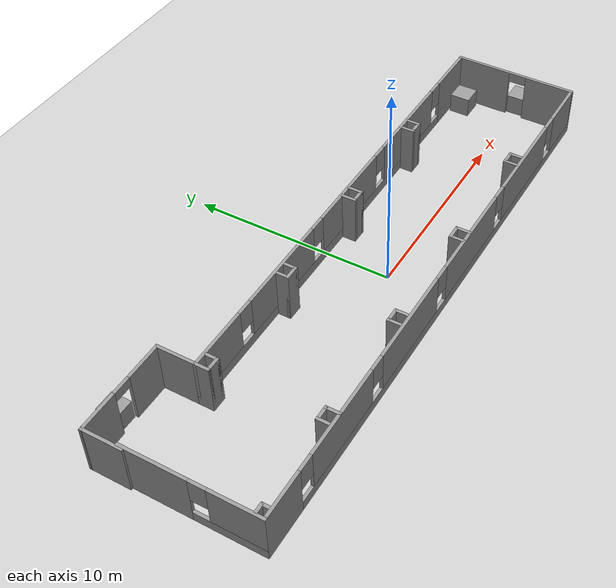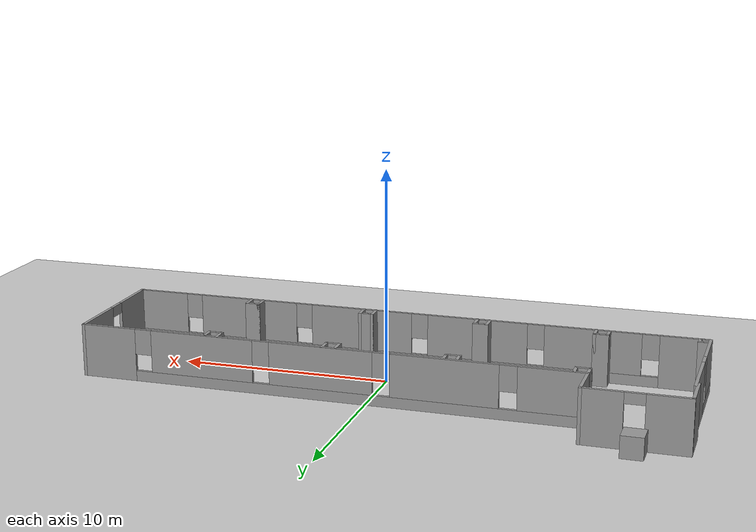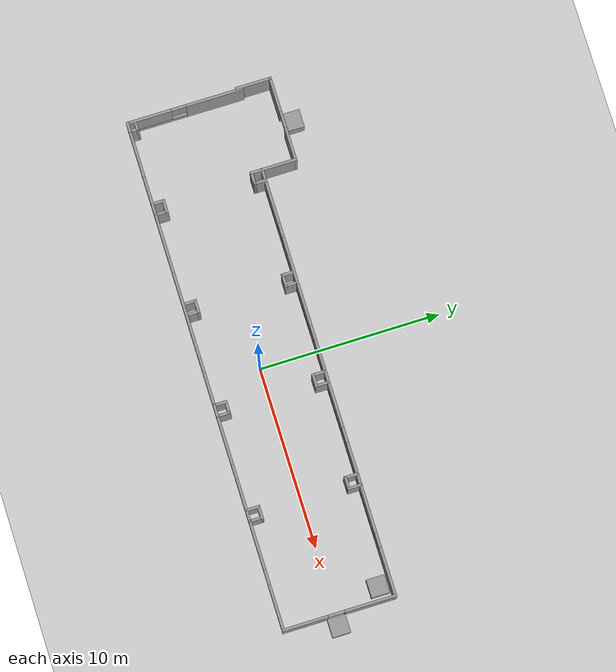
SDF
<sdf version="1.7">
 <world name="default">
  <light name="sun" type="directional">
   <pose>0 0 10 0 -0 0</pose>
   <diffuse>0.8 0.8 0.8 1</diffuse>
   <specular>0.2 0.2 0.2 1</specular>
   <attenuation>
    <range>1000</range>
    <constant>0.9</constant>
    <linear>0.01</linear>
    <quadratic>0.001</quadratic>
   </attenuation>
   <direction>-0.5 0.1 -0.9</direction>
   <spot><inner_angle>0</inner_angle><outer_angle>0</outer_angle><falloff>0</falloff></spot>
  </light>
  <model name="ground_plane">
   <static>1</static>
   <link name="link">
    <collision name="collision">
     <geometry><plane><normal>0 0 1</normal><size>100 100</size></plane></geometry>
     <surface>
      <contact><collide_bitmask>65535</collide_bitmask></contact>
      <friction><ode><mu>100</mu><mu2>50</mu2></ode></friction>
     </surface>
    </collision>
    <visual name="visual">
     <cast_shadows>0</cast_shadows>
     <geometry><plane><normal>0 0 1</normal><size>100 100</size></plane></geometry>
     <material>
      <script><uri>file://media/materials/scripts/gazebo.material</uri><name>Gazebo/Grey</name></script>
     </material>
    </visual>
   </link>
  </model>
  <gravity>0 0 -9.8</gravity>
  <magnetic_field>6e-06 2.3e-05 -4.2e-05</magnetic_field>
  <atmosphere type="adiabatic"/>
  <physics type="ode">
   <max_step_size>0.001</max_step_size>
   <real_time_factor>1</real_time_factor>
   <real_time_update_rate>1000</real_time_update_rate>
  </physics>
  <scene><ambient>0.4 0.4 0.4 1</ambient><background>0.7 0.7 0.7 1</background><shadows>1</shadows></scene>
  <spherical_coordinates>
   <surface_model>EARTH_WGS84</surface_model>
   <latitude_deg>0</latitude_deg>
   <longitude_deg>0</longitude_deg>
   <elevation>0</elevation>
   <heading_deg>0</heading_deg>
  </spherical_coordinates>
  <model name="hanhlang11">
   <pose>-0.360122 1.04429 0 0 -0 0</pose>
   <link name="Wall_10">
    <pose>-11.8 3.975 0 0 -0 3.14159</pose>
    <visual name="Wall_10_Visual_0">
     <pose>-1.4343 0 1.25 0 -0 0</pose>
     <geometry><box><size>1.8814 0.15 2.5</size></box></geometry>
     <material>
      <script><uri>file://media/materials/scripts/gazebo.material</uri><name>Gazebo/Grey</name></script>
      <ambient>1 1 1 1</ambient>
     </material>
     <meta><layer>0</layer></meta>
    </visual>
    <collision name="Wall_10_Collision_0">
     <geometry><box><size>1.8814 0.15 2.5</size></box></geometry>
     <pose>-1.4343 0 1.25 0 -0 0</pose>
    </collision>
    <visual name="Wall_10_Visual_1">
     <pose>1.3907 0 1.25 0 -0 0</pose>
     <geometry><box><size>1.9686 0.15 2.5</size></box></geometry>
     <material>
      <script><uri>file://media/materials/scripts/gazebo.material</uri><name>Gazebo/Grey</name></script>
      <ambient>1 1 1 1</ambient>
     </material>
     <meta><layer>0</layer></meta>
    </visual>
    <collision name="Wall_10_Collision_1">
     <geometry><box><size>1.9686 0.15 2.5</size></box></geometry>
     <pose>1.3907 0 1.25 0 -0 0</pose>
    </collision>
    <visual name="Wall_10_Visual_2">
     <pose>-0.043604 0 2.25 0 -0 0</pose>
     <geometry><box><size>0.9 0.15 0.5</size></box></geometry>
     <material>
      <script><uri>file://media/materials/scripts/gazebo.material</uri><name>Gazebo/Grey</name></script>
      <ambient>1 1 1 1</ambient>
     </material>
     <meta><layer>0</layer></meta>
    </visual>
    <collision name="Wall_10_Collision_2">
     <geometry><box><size>0.9 0.15 0.5</size></box></geometry>
     <pose>-0.043604 0 2.25 0 -0 0</pose>
    </collision>
   </link>
   <link name="Wall_11">
    <collision name="Wall_11_Collision">
     <geometry><box><size>0.15 0.15 2.5</size></box></geometry>
     <pose>0 0 1.25 0 -0 0</pose>
    </collision>
    <visual name="Wall_11_Visual">
     <pose>0 0 1.25 0 -0 0</pose>
     <geometry><box><size>0.15 0.15 2.5</size></box></geometry>
     <material>
      <script><uri>file://media/materials/scripts/gazebo.material</uri><name>Gazebo/Grey</name></script>
      <ambient>1 1 1 1</ambient>
     </material>
     <meta><layer>0</layer></meta>
    </visual>
    <pose>-14.1 3.975 0 0 -0 0</pose>
   </link>
   <link name="Wall_12">
    <collision name="Wall_12_Collision">
     <geometry><box><size>2 0.15 2.5</size></box></geometry>
     <pose>0 0 1.25 0 -0 0</pose>
    </collision>
    <visual name="Wall_12_Visual">
     <pose>0 0 1.25 0 -0 0</pose>
     <geometry><box><size>2 0.15 2.5</size></box></geometry>
     <material>
      <script><uri>file://media/materials/scripts/gazebo.material</uri><name>Gazebo/Grey</name></script>
      <ambient>1 1 1 1</ambient>
     </material>
     <meta><layer>0</layer></meta>
    </visual>
    <pose>-14.1 3.05 0 0 -0 -1.5708</pose>
   </link>
   <link name="Wall_5">
    <pose>-14 -0.8 0 0 -0 -1.5708</pose>
    <visual name="Wall_5_Visual_0">
     <pose>-1.65425 0 1.25 0 -0 0</pose>
     <geometry><box><size>3.1915 0.15 2.5</size></box></geometry>
     <material>
      <script><uri>file://media/materials/scripts/gazebo.material</uri><name>Gazebo/Grey</name></script>
      <ambient>1 1 1 1</ambient>
     </material>
     <meta><layer>0</layer></meta>
    </visual>
    <collision name="Wall_5_Collision_0">
     <geometry><box><size>3.1915 0.15 2.5</size></box></geometry>
     <pose>-1.65425 0 1.25 0 -0 0</pose>
    </collision>
    <visual name="Wall_5_Visual_1">
     <pose>1.59575 0 0.25 0 -0 0</pose>
     <geometry><box><size>3.3085 0.15 0.5</size></box></geometry>
     <material>
      <script><uri>file://media/materials/scripts/gazebo.material</uri><name>Gazebo/Grey</name></script>
      <ambient>1 1 1 1</ambient>
     </material>
     <meta><layer>0</layer></meta>
    </visual>
    <collision name="Wall_5_Collision_1">
     <geometry><box><size>3.3085 0.15 0.5</size></box></geometry>
     <pose>1.59575 0 0.25 0 -0 0</pose>
    </collision>
    <visual name="Wall_5_Visual_2">
     <pose>1.99575 0 1.5 0 -0 0</pose>
     <geometry><box><size>2.5085 0.15 2</size></box></geometry>
     <material>
      <script><uri>file://media/materials/scripts/gazebo.material</uri><name>Gazebo/Grey</name></script>
      <ambient>1 1 1 1</ambient>
     </material>
     <meta><layer>0</layer></meta>
    </visual>
    <collision name="Wall_5_Collision_2">
     <geometry><box><size>2.5085 0.15 2</size></box></geometry>
     <pose>1.99575 0 1.5 0 -0 0</pose>
    </collision>
    <visual name="Wall_5_Visual_3">
     <pose>0.341496 0 1.9 0 -0 0</pose>
     <geometry><box><size>0.8 0.15 1.2</size></box></geometry>
     <material>
      <script><uri>file://media/materials/scripts/gazebo.material</uri><name>Gazebo/Grey</name></script>
      <ambient>1 1 1 1</ambient>
     </material>
     <meta><layer>0</layer></meta>
    </visual>
    <collision name="Wall_5_Collision_3">
     <geometry><box><size>0.8 0.15 1.2</size></box></geometry>
     <pose>0.341496 0 1.9 0 -0 0</pose>
    </collision>
   </link>
   <link name="Wall_53">
    <collision name="Wall_53_Collision">
     <geometry><box><size>0.5 0.15 2.5</size></box></geometry>
     <pose>0 0 1.25 0 -0 0</pose>
    </collision>
    <visual name="Wall_53_Visual">
     <pose>0 0 1.25 0 -0 0</pose>
     <geometry><box><size>0.5 0.15 2.5</size></box></geometry>
     <material>
      <script><uri>file://media/materials/scripts/gazebo.material</uri><name>Gazebo/Grey</name></script>
      <ambient>1 1 1 1</ambient>
     </material>
     <meta><layer>0</layer></meta>
    </visual>
    <pose>-13.5375 -3.74217 0 0 -0 1.5708</pose>
   </link>
   <link name="Wall_54">
    <collision name="Wall_54_Collision">
     <geometry><box><size>0.5 0.15 2.5</size></box></geometry>
     <pose>0 0 1.25 0 -0 0</pose>
    </collision>
    <visual name="Wall_54_Visual">
     <pose>0 0 1.25 0 -0 0</pose>
     <geometry><box><size>0.5 0.15 2.5</size></box></geometry>
     <material>
      <script><uri>file://media/materials/scripts/gazebo.material</uri><name>Gazebo/Grey</name></script>
      <ambient>1 1 1 1</ambient>
     </material>
     <meta><layer>0</layer></meta>
    </visual>
    <pose>-13.7125 -3.56717 0 0 -0 3.14159</pose>
   </link>
   <link name="Wall_6">
    <pose>0.05 -3.975 0 0 -0 0</pose>
    <visual name="Wall_6_Visual_0">
     <pose>-12.9575 0 1.25 0 -0 0</pose>
     <geometry><box><size>2.33495 0.15 2.5</size></box></geometry>
     <material>
      <script><uri>file://media/materials/scripts/gazebo.material</uri><name>Gazebo/Grey</name></script>
      <ambient>1 1 1 1</ambient>
     </material>
     <meta><layer>0</layer></meta>
    </visual>
    <collision name="Wall_6_Collision_0">
     <geometry><box><size>2.33495 0.15 2.5</size></box></geometry>
     <pose>-12.9575 0 1.25 0 -0 0</pose>
    </collision>
    <visual name="Wall_6_Visual_1">
     <pose>1.16748 0 0.25 0 -0 0</pose>
     <geometry><box><size>25.915 0.15 0.5</size></box></geometry>
     <material>
      <script><uri>file://media/materials/scripts/gazebo.material</uri><name>Gazebo/Grey</name></script>
      <ambient>1 1 1 1</ambient>
     </material>
     <meta><layer>0</layer></meta>
    </visual>
    <collision name="Wall_6_Collision_1">
     <geometry><box><size>25.915 0.15 0.5</size></box></geometry>
     <pose>1.16748 0 0.25 0 -0 0</pose>
    </collision>
    <visual name="Wall_6_Visual_2">
     <pose>-8.73003 0 1.5 0 -0 0</pose>
     <geometry><box><size>4.52004 0.15 2</size></box></geometry>
     <material>
      <script><uri>file://media/materials/scripts/gazebo.material</uri><name>Gazebo/Grey</name></script>
      <ambient>1 1 1 1</ambient>
     </material>
     <meta><layer>0</layer></meta>
    </visual>
    <collision name="Wall_6_Collision_2">
     <geometry><box><size>4.52004 0.15 2</size></box></geometry>
     <pose>-8.73003 0 1.5 0 -0 0</pose>
    </collision>
    <visual name="Wall_6_Visual_3">
     <pose>-3.25964 0 1.5 0 -0 0</pose>
     <geometry><box><size>4.82074 0.15 2</size></box></geometry>
     <material>
      <script><uri>file://media/materials/scripts/gazebo.material</uri><name>Gazebo/Grey</name></script>
      <ambient>1 1 1 1</ambient>
     </material>
     <meta><layer>0</layer></meta>
    </visual>
    <collision name="Wall_6_Collision_3">
     <geometry><box><size>4.82074 0.15 2</size></box></geometry>
     <pose>-3.25964 0 1.5 0 -0 0</pose>
    </collision>
    <visual name="Wall_6_Visual_4">
     <pose>2.46519 0 1.5 0 -0 0</pose>
     <geometry><box><size>5.02891 0.15 2</size></box></geometry>
     <material>
      <script><uri>file://media/materials/scripts/gazebo.material</uri><name>Gazebo/Grey</name></script>
      <ambient>1 1 1 1</ambient>
     </material>
     <meta><layer>0</layer></meta>
    </visual>
    <collision name="Wall_6_Collision_4">
     <geometry><box><size>5.02891 0.15 2</size></box></geometry>
     <pose>2.46519 0 1.5 0 -0 0</pose>
    </collision>
    <visual name="Wall_6_Visual_5">
     <pose>8.27097 0 1.5 0 -0 0</pose>
     <geometry><box><size>4.98265 0.15 2</size></box></geometry>
     <material>
      <script><uri>file://media/materials/scripts/gazebo.material</uri><name>Gazebo/Grey</name></script>
      <ambient>1 1 1 1</ambient>
     </material>
     <meta><layer>0</layer></meta>
    </visual>
    <collision name="Wall_6_Collision_5">
     <geometry><box><size>4.98265 0.15 2</size></box></geometry>
     <pose>8.27097 0 1.5 0 -0 0</pose>
    </collision>
    <visual name="Wall_6_Visual_6">
     <pose>12.8436 0 1.5 0 -0 0</pose>
     <geometry><box><size>2.5627 0.15 2</size></box></geometry>
     <material>
      <script><uri>file://media/materials/scripts/gazebo.material</uri><name>Gazebo/Grey</name></script>
      <ambient>1 1 1 1</ambient>
     </material>
     <meta><layer>0</layer></meta>
    </visual>
    <collision name="Wall_6_Collision_6">
     <geometry><box><size>2.5627 0.15 2</size></box></geometry>
     <pose>12.8436 0 1.5 0 -0 0</pose>
    </collision>
    <visual name="Wall_6_Visual_7">
     <pose>-11.39 0 1.9 0 -0 0</pose>
     <geometry><box><size>0.8 0.15 1.2</size></box></geometry>
     <material>
      <script><uri>file://media/materials/scripts/gazebo.material</uri><name>Gazebo/Grey</name></script>
      <ambient>1 1 1 1</ambient>
     </material>
     <meta><layer>0</layer></meta>
    </visual>
    <collision name="Wall_6_Collision_7">
     <geometry><box><size>0.8 0.15 1.2</size></box></geometry>
     <pose>-11.39 0 1.9 0 -0 0</pose>
    </collision>
    <visual name="Wall_6_Visual_8">
     <pose>-6.07001 0 1.9 0 -0 0</pose>
     <geometry><box><size>0.8 0.15 1.2</size></box></geometry>
     <material>
      <script><uri>file://media/materials/scripts/gazebo.material</uri><name>Gazebo/Grey</name></script>
      <ambient>1 1 1 1</ambient>
     </material>
     <meta><layer>0</layer></meta>
    </visual>
    <collision name="Wall_6_Collision_8">
     <geometry><box><size>0.8 0.15 1.2</size></box></geometry>
     <pose>-6.07001 0 1.9 0 -0 0</pose>
    </collision>
    <visual name="Wall_6_Visual_9">
     <pose>-0.449268 0 1.9 0 -0 0</pose>
     <geometry><box><size>0.8 0.15 1.2</size></box></geometry>
     <material>
      <script><uri>file://media/materials/scripts/gazebo.material</uri><name>Gazebo/Grey</name></script>
      <ambient>1 1 1 1</ambient>
     </material>
     <meta><layer>0</layer></meta>
    </visual>
    <collision name="Wall_6_Collision_9">
     <geometry><box><size>0.8 0.15 1.2</size></box></geometry>
     <pose>-0.449268 0 1.9 0 -0 0</pose>
    </collision>
    <visual name="Wall_6_Visual_10">
     <pose>5.37965 0 1.9 0 -0 0</pose>
     <geometry><box><size>0.8 0.15 1.2</size></box></geometry>
     <material>
      <script><uri>file://media/materials/scripts/gazebo.material</uri><name>Gazebo/Grey</name></script>
      <ambient>1 1 1 1</ambient>
     </material>
     <meta><layer>0</layer></meta>
    </visual>
    <collision name="Wall_6_Collision_10">
     <geometry><box><size>0.8 0.15 1.2</size></box></geometry>
     <pose>5.37965 0 1.9 0 -0 0</pose>
    </collision>
    <visual name="Wall_6_Visual_11">
     <pose>11.1623 0 1.9 0 -0 0</pose>
     <geometry><box><size>0.8 0.15 1.2</size></box></geometry>
     <material>
      <script><uri>file://media/materials/scripts/gazebo.material</uri><name>Gazebo/Grey</name></script>
      <ambient>1 1 1 1</ambient>
     </material>
     <meta><layer>0</layer></meta>
    </visual>
    <collision name="Wall_6_Collision_11">
     <geometry><box><size>0.8 0.15 1.2</size></box></geometry>
     <pose>11.1623 0 1.9 0 -0 0</pose>
    </collision>
   </link>
   <link name="Wall_62">
    <collision name="Wall_62_Collision">
     <geometry><box><size>0.75 0.15 2.5</size></box></geometry>
     <pose>0 0 1.25 0 -0 0</pose>
    </collision>
    <visual name="Wall_62_Visual">
     <pose>0 0 1.25 0 -0 0</pose>
     <geometry><box><size>0.75 0.15 2.5</size></box></geometry>
     <material>
      <script><uri>file://media/materials/scripts/gazebo.material</uri><name>Gazebo/Grey</name></script>
      <ambient>1 1 1 1</ambient>
     </material>
     <meta><layer>0</layer></meta>
    </visual>
    <pose>7.4452 1.77581 0 0 -0 -1.5708</pose>
   </link>
   <link name="Wall_63">
    <collision name="Wall_63_Collision">
     <geometry><box><size>0.75 0.15 2.5</size></box></geometry>
     <pose>0 0 1.25 0 -0 0</pose>
    </collision>
    <visual name="Wall_63_Visual">
     <pose>0 0 1.25 0 -0 0</pose>
     <geometry><box><size>0.75 0.15 2.5</size></box></geometry>
     <material>
      <script><uri>file://media/materials/scripts/gazebo.material</uri><name>Gazebo/Grey</name></script>
      <ambient>1 1 1 1</ambient>
     </material>
     <meta><layer>0</layer></meta>
    </visual>
    <pose>7.7452 1.47581 0 0 -0 0</pose>
   </link>
   <link name="Wall_64">
    <collision name="Wall_64_Collision">
     <geometry><box><size>0.75 0.15 2.5</size></box></geometry>
     <pose>0 0 1.25 0 -0 0</pose>
    </collision>
    <visual name="Wall_64_Visual">
     <pose>0 0 1.25 0 -0 0</pose>
     <geometry><box><size>0.75 0.15 2.5</size></box></geometry>
     <material>
      <script><uri>file://media/materials/scripts/gazebo.material</uri><name>Gazebo/Grey</name></script>
      <ambient>1 1 1 1</ambient>
     </material>
     <meta><layer>0</layer></meta>
    </visual>
    <pose>8.0452 1.77581 0 0 -0 1.5708</pose>
   </link>
   <link name="Wall_66">
    <collision name="Wall_66_Collision">
     <geometry><box><size>0.75 0.15 2.5</size></box></geometry>
     <pose>0 0 1.25 0 -0 0</pose>
    </collision>
    <visual name="Wall_66_Visual">
     <pose>0 0 1.25 0 -0 0</pose>
     <geometry><box><size>0.75 0.15 2.5</size></box></geometry>
     <material>
      <script><uri>file://media/materials/scripts/gazebo.material</uri><name>Gazebo/Grey</name></script>
      <ambient>1 1 1 1</ambient>
     </material>
     <meta><layer>0</layer></meta>
    </visual>
    <pose>7.56085 -3.61502 0 0 -0 1.5708</pose>
   </link>
   <link name="Wall_67">
    <collision name="Wall_67_Collision">
     <geometry><box><size>0.75 0.15 2.5</size></box></geometry>
     <pose>0 0 1.25 0 -0 0</pose>
    </collision>
    <visual name="Wall_67_Visual">
     <pose>0 0 1.25 0 -0 0</pose>
     <geometry><box><size>0.75 0.15 2.5</size></box></geometry>
     <material>
      <script><uri>file://media/materials/scripts/gazebo.material</uri><name>Gazebo/Grey</name></script>
      <ambient>1 1 1 1</ambient>
     </material>
     <meta><layer>0</layer></meta>
    </visual>
    <pose>7.86085 -3.31502 0 0 -0 0</pose>
   </link>
   <link name="Wall_68">
    <collision name="Wall_68_Collision">
     <geometry><box><size>0.75 0.15 2.5</size></box></geometry>
     <pose>0 0 1.25 0 -0 0</pose>
    </collision>
    <visual name="Wall_68_Visual">
     <pose>0 0 1.25 0 -0 0</pose>
     <geometry><box><size>0.75 0.15 2.5</size></box></geometry>
     <material>
      <script><uri>file://media/materials/scripts/gazebo.material</uri><name>Gazebo/Grey</name></script>
      <ambient>1 1 1 1</ambient>
     </material>
     <meta><layer>0</layer></meta>
    </visual>
    <pose>8.16085 -3.61502 0 0 -0 -1.5708</pose>
   </link>
   <link name="Wall_7">
    <pose>14.1 -0.925 0 0 -0 1.5708</pose>
    <visual name="Wall_7_Visual_0">
     <pose>-1.86695 0 1.25 0 -0 0</pose>
     <geometry><box><size>2.5161 0.15 2.5</size></box></geometry>
     <material>
      <script><uri>file://media/materials/scripts/gazebo.material</uri><name>Gazebo/Grey</name></script>
      <ambient>1 1 1 1</ambient>
     </material>
     <meta><layer>0</layer></meta>
    </visual>
    <collision name="Wall_7_Collision_0">
     <geometry><box><size>2.5161 0.15 2.5</size></box></geometry>
     <pose>-1.86695 0 1.25 0 -0 0</pose>
    </collision>
    <visual name="Wall_7_Visual_1">
     <pose>1.70805 0 1.25 0 -0 0</pose>
     <geometry><box><size>2.8339 0.15 2.5</size></box></geometry>
     <material>
      <script><uri>file://media/materials/scripts/gazebo.material</uri><name>Gazebo/Grey</name></script>
      <ambient>1 1 1 1</ambient>
     </material>
     <meta><layer>0</layer></meta>
    </visual>
    <collision name="Wall_7_Collision_1">
     <geometry><box><size>2.8339 0.15 2.5</size></box></geometry>
     <pose>1.70805 0 1.25 0 -0 0</pose>
    </collision>
    <visual name="Wall_7_Visual_2">
     <pose>-0.158896 0 2.25 0 -0 0</pose>
     <geometry><box><size>0.9 0.15 0.5</size></box></geometry>
     <material>
      <script><uri>file://media/materials/scripts/gazebo.material</uri><name>Gazebo/Grey</name></script>
      <ambient>1 1 1 1</ambient>
     </material>
     <meta><layer>0</layer></meta>
    </visual>
    <collision name="Wall_7_Collision_2">
     <geometry><box><size>0.9 0.15 0.5</size></box></geometry>
     <pose>-0.158896 0 2.25 0 -0 0</pose>
    </collision>
   </link>
   <link name="Wall_70">
    <collision name="Wall_70_Collision">
     <geometry><box><size>0.75 0.15 2.5</size></box></geometry>
     <pose>0 0 1.25 0 -0 0</pose>
    </collision>
    <visual name="Wall_70_Visual">
     <pose>0 0 1.25 0 -0 0</pose>
     <geometry><box><size>0.75 0.15 2.5</size></box></geometry>
     <material>
      <script><uri>file://media/materials/scripts/gazebo.material</uri><name>Gazebo/Grey</name></script>
      <ambient>1 1 1 1</ambient>
     </material>
     <meta><layer>0</layer></meta>
    </visual>
    <pose>1.7782 1.75268 0 0 -0 -1.5708</pose>
   </link>
   <link name="Wall_71">
    <collision name="Wall_71_Collision">
     <geometry><box><size>0.75 0.15 2.5</size></box></geometry>
     <pose>0 0 1.25 0 -0 0</pose>
    </collision>
    <visual name="Wall_71_Visual">
     <pose>0 0 1.25 0 -0 0</pose>
     <geometry><box><size>0.75 0.15 2.5</size></box></geometry>
     <material>
      <script><uri>file://media/materials/scripts/gazebo.material</uri><name>Gazebo/Grey</name></script>
      <ambient>1 1 1 1</ambient>
     </material>
     <meta><layer>0</layer></meta>
    </visual>
    <pose>2.0782 1.45268 0 0 -0 0</pose>
   </link>
   <link name="Wall_72">
    <collision name="Wall_72_Collision">
     <geometry><box><size>0.75 0.15 2.5</size></box></geometry>
     <pose>0 0 1.25 0 -0 0</pose>
    </collision>
    <visual name="Wall_72_Visual">
     <pose>0 0 1.25 0 -0 0</pose>
     <geometry><box><size>0.75 0.15 2.5</size></box></geometry>
     <material>
      <script><uri>file://media/materials/scripts/gazebo.material</uri><name>Gazebo/Grey</name></script>
      <ambient>1 1 1 1</ambient>
     </material>
     <meta><layer>0</layer></meta>
    </visual>
    <pose>2.3782 1.75268 0 0 -0 1.5708</pose>
   </link>
   <link name="Wall_75">
    <collision name="Wall_75_Collision">
     <geometry><box><size>0.75 0.15 2.5</size></box></geometry>
     <pose>0 0 1.25 0 -0 0</pose>
    </collision>
    <visual name="Wall_75_Visual">
     <pose>0 0 1.25 0 -0 0</pose>
     <geometry><box><size>0.75 0.15 2.5</size></box></geometry>
     <material>
      <script><uri>file://media/materials/scripts/gazebo.material</uri><name>Gazebo/Grey</name></script>
      <ambient>1 1 1 1</ambient>
     </material>
     <meta><layer>0</layer></meta>
    </visual>
    <pose>1.7782 -3.63815 0 0 -0 1.5708</pose>
   </link>
   <link name="Wall_76">
    <collision name="Wall_76_Collision">
     <geometry><box><size>0.75 0.15 2.5</size></box></geometry>
     <pose>0 0 1.25 0 -0 0</pose>
    </collision>
    <visual name="Wall_76_Visual">
     <pose>0 0 1.25 0 -0 0</pose>
     <geometry><box><size>0.75 0.15 2.5</size></box></geometry>
     <material>
      <script><uri>file://media/materials/scripts/gazebo.material</uri><name>Gazebo/Grey</name></script>
      <ambient>1 1 1 1</ambient>
     </material>
     <meta><layer>0</layer></meta>
    </visual>
    <pose>2.0782 -3.33815 0 0 -0 0</pose>
   </link>
   <link name="Wall_77">
    <collision name="Wall_77_Collision">
     <geometry><box><size>0.75 0.15 2.5</size></box></geometry>
     <pose>0 0 1.25 0 -0 0</pose>
    </collision>
    <visual name="Wall_77_Visual">
     <pose>0 0 1.25 0 -0 0</pose>
     <geometry><box><size>0.75 0.15 2.5</size></box></geometry>
     <material>
      <script><uri>file://media/materials/scripts/gazebo.material</uri><name>Gazebo/Grey</name></script>
      <ambient>1 1 1 1</ambient>
     </material>
     <meta><layer>0</layer></meta>
    </visual>
    <pose>2.3782 -3.63815 0 0 -0 -1.5708</pose>
   </link>
   <link name="Wall_79">
    <collision name="Wall_79_Collision">
     <geometry><box><size>0.75 0.15 2.5</size></box></geometry>
     <pose>0 0 1.25 0 -0 0</pose>
    </collision>
    <visual name="Wall_79_Visual">
     <pose>0 0 1.25 0 -0 0</pose>
     <geometry><box><size>0.75 0.15 2.5</size></box></geometry>
     <material>
      <script><uri>file://media/materials/scripts/gazebo.material</uri><name>Gazebo/Grey</name></script>
      <ambient>1 1 1 1</ambient>
     </material>
     <meta><layer>0</layer></meta>
    </visual>
    <pose>-3.77314 1.79894 0 0 -0 -1.5708</pose>
   </link>
   <link name="Wall_8">
    <pose>2.3 2.125 0 0 -0 3.14159</pose>
    <visual name="Wall_8_Visual_0">
     <pose>-10.5243 0 1.25 0 -0 0</pose>
     <geometry><box><size>2.70149 0.15 2.5</size></box></geometry>
     <material>
      <script><uri>file://media/materials/scripts/gazebo.material</uri><name>Gazebo/Grey</name></script>
      <ambient>1 1 1 1</ambient>
     </material>
     <meta><layer>0</layer></meta>
    </visual>
    <collision name="Wall_8_Collision_0">
     <geometry><box><size>2.70149 0.15 2.5</size></box></geometry>
     <pose>-10.5243 0 1.25 0 -0 0</pose>
    </collision>
    <visual name="Wall_8_Visual_1">
     <pose>1.35074 0 0.25 0 -0 0</pose>
     <geometry><box><size>21.0485 0.15 0.5</size></box></geometry>
     <material>
      <script><uri>file://media/materials/scripts/gazebo.material</uri><name>Gazebo/Grey</name></script>
      <ambient>1 1 1 1</ambient>
     </material>
     <meta><layer>0</layer></meta>
    </visual>
    <collision name="Wall_8_Collision_1">
     <geometry><box><size>21.0485 0.15 0.5</size></box></geometry>
     <pose>1.35074 0 0.25 0 -0 0</pose>
    </collision>
    <visual name="Wall_8_Visual_2">
     <pose>-5.88219 0 1.5 0 -0 0</pose>
     <geometry><box><size>4.98265 0.15 2</size></box></geometry>
     <material>
      <script><uri>file://media/materials/scripts/gazebo.material</uri><name>Gazebo/Grey</name></script>
      <ambient>1 1 1 1</ambient>
     </material>
     <meta><layer>0</layer></meta>
    </visual>
    <collision name="Wall_8_Collision_2">
     <geometry><box><size>4.98265 0.15 2</size></box></geometry>
     <pose>-5.88219 0 1.5 0 -0 0</pose>
    </collision>
    <visual name="Wall_8_Visual_3">
     <pose>-0.157362 0 1.5 0 -0 0</pose>
     <geometry><box><size>4.867 0.15 2</size></box></geometry>
     <material>
      <script><uri>file://media/materials/scripts/gazebo.material</uri><name>Gazebo/Grey</name></script>
      <ambient>1 1 1 1</ambient>
     </material>
     <meta><layer>0</layer></meta>
    </visual>
    <collision name="Wall_8_Collision_3">
     <geometry><box><size>4.867 0.15 2</size></box></geometry>
     <pose>-0.157362 0 1.5 0 -0 0</pose>
    </collision>
    <visual name="Wall_8_Visual_4">
     <pose>5.53277 0 1.5 0 -0 0</pose>
     <geometry><box><size>4.91326 0.15 2</size></box></geometry>
     <material>
      <script><uri>file://media/materials/scripts/gazebo.material</uri><name>Gazebo/Grey</name></script>
      <ambient>1 1 1 1</ambient>
     </material>
     <meta><layer>0</layer></meta>
    </visual>
    <collision name="Wall_8_Collision_4">
     <geometry><box><size>4.91326 0.15 2</size></box></geometry>
     <pose>5.53277 0 1.5 0 -0 0</pose>
    </collision>
    <visual name="Wall_8_Visual_5">
     <pose>10.3322 0 1.5 0 -0 0</pose>
     <geometry><box><size>3.0856 0.15 2</size></box></geometry>
     <material>
      <script><uri>file://media/materials/scripts/gazebo.material</uri><name>Gazebo/Grey</name></script>
      <ambient>1 1 1 1</ambient>
     </material>
     <meta><layer>0</layer></meta>
    </visual>
    <collision name="Wall_8_Collision_5">
     <geometry><box><size>3.0856 0.15 2</size></box></geometry>
     <pose>10.3322 0 1.5 0 -0 0</pose>
    </collision>
    <visual name="Wall_8_Visual_6">
     <pose>-8.77351 0 1.9 0 -0 0</pose>
     <geometry><box><size>0.8 0.15 1.2</size></box></geometry>
     <material>
      <script><uri>file://media/materials/scripts/gazebo.material</uri><name>Gazebo/Grey</name></script>
      <ambient>1 1 1 1</ambient>
     </material>
     <meta><layer>0</layer></meta>
    </visual>
    <collision name="Wall_8_Collision_6">
     <geometry><box><size>0.8 0.15 1.2</size></box></geometry>
     <pose>-8.77351 0 1.9 0 -0 0</pose>
    </collision>
    <visual name="Wall_8_Visual_7">
     <pose>-2.99086 0 1.9 0 -0 0</pose>
     <geometry><box><size>0.8 0.15 1.2</size></box></geometry>
     <material>
      <script><uri>file://media/materials/scripts/gazebo.material</uri><name>Gazebo/Grey</name></script>
      <ambient>1 1 1 1</ambient>
     </material>
     <meta><layer>0</layer></meta>
    </visual>
    <collision name="Wall_8_Collision_7">
     <geometry><box><size>0.8 0.15 1.2</size></box></geometry>
     <pose>-2.99086 0 1.9 0 -0 0</pose>
    </collision>
    <visual name="Wall_8_Visual_8">
     <pose>2.67614 0 1.9 0 -0 0</pose>
     <geometry><box><size>0.8 0.15 1.2</size></box></geometry>
     <material>
      <script><uri>file://media/materials/scripts/gazebo.material</uri><name>Gazebo/Grey</name></script>
      <ambient>1 1 1 1</ambient>
     </material>
     <meta><layer>0</layer></meta>
    </visual>
    <collision name="Wall_8_Collision_8">
     <geometry><box><size>0.8 0.15 1.2</size></box></geometry>
     <pose>2.67614 0 1.9 0 -0 0</pose>
    </collision>
    <visual name="Wall_8_Visual_9">
     <pose>8.3894 0 1.9 0 -0 0</pose>
     <geometry><box><size>0.8 0.15 1.2</size></box></geometry>
     <material>
      <script><uri>file://media/materials/scripts/gazebo.material</uri><name>Gazebo/Grey</name></script>
      <ambient>1 1 1 1</ambient>
     </material>
     <meta><layer>0</layer></meta>
    </visual>
    <collision name="Wall_8_Collision_9">
     <geometry><box><size>0.8 0.15 1.2</size></box></geometry>
     <pose>8.3894 0 1.9 0 -0 0</pose>
    </collision>
   </link>
   <link name="Wall_80">
    <collision name="Wall_80_Collision">
     <geometry><box><size>0.75 0.15 2.5</size></box></geometry>
     <pose>0 0 1.25 0 -0 0</pose>
    </collision>
    <visual name="Wall_80_Visual">
     <pose>0 0 1.25 0 -0 0</pose>
     <geometry><box><size>0.75 0.15 2.5</size></box></geometry>
     <material>
      <script><uri>file://media/materials/scripts/gazebo.material</uri><name>Gazebo/Grey</name></script>
      <ambient>1 1 1 1</ambient>
     </material>
     <meta><layer>0</layer></meta>
    </visual>
    <pose>-3.47314 1.49894 0 0 -0 0</pose>
   </link>
   <link name="Wall_84">
    <collision name="Wall_84_Collision">
     <geometry><box><size>0.75 0.15 2.5</size></box></geometry>
     <pose>0 0 1.25 0 -0 0</pose>
    </collision>
    <visual name="Wall_84_Visual">
     <pose>0 0 1.25 0 -0 0</pose>
     <geometry><box><size>0.75 0.15 2.5</size></box></geometry>
     <material>
      <script><uri>file://media/materials/scripts/gazebo.material</uri><name>Gazebo/Grey</name></script>
      <ambient>1 1 1 1</ambient>
     </material>
     <meta><layer>0</layer></meta>
    </visual>
    <pose>-3.17314 1.79894 0 0 -0 1.5708</pose>
   </link>
   <link name="Wall_86">
    <collision name="Wall_86_Collision">
     <geometry><box><size>0.75 0.15 2.5</size></box></geometry>
     <pose>0 0 1.25 0 -0 0</pose>
    </collision>
    <visual name="Wall_86_Visual">
     <pose>0 0 1.25 0 -0 0</pose>
     <geometry><box><size>0.75 0.15 2.5</size></box></geometry>
     <material>
      <script><uri>file://media/materials/scripts/gazebo.material</uri><name>Gazebo/Grey</name></script>
      <ambient>1 1 1 1</ambient>
     </material>
     <meta><layer>0</layer></meta>
    </visual>
    <pose>-3.81941 -3.61502 0 0 -0 1.5708</pose>
   </link>
   <link name="Wall_9">
    <collision name="Wall_9_Collision">
     <geometry><box><size>2 0.15 2.5</size></box></geometry>
     <pose>0 0 1.25 0 -0 0</pose>
    </collision>
    <visual name="Wall_9_Visual">
     <pose>0 0 1.25 0 -0 0</pose>
     <geometry><box><size>2 0.15 2.5</size></box></geometry>
     <material>
      <script><uri>file://media/materials/scripts/gazebo.material</uri><name>Gazebo/Grey</name></script>
      <ambient>1 1 1 1</ambient>
     </material>
     <meta><layer>0</layer></meta>
    </visual>
    <pose>-9.5 3.05 0 0 -0 1.5708</pose>
   </link>
   <link name="Wall_90">
    <collision name="Wall_90_Collision">
     <geometry><box><size>0.75 0.15 2.5</size></box></geometry>
     <pose>0 0 1.25 0 -0 0</pose>
    </collision>
    <visual name="Wall_90_Visual">
     <pose>0 0 1.25 0 -0 0</pose>
     <geometry><box><size>0.75 0.15 2.5</size></box></geometry>
     <material>
      <script><uri>file://media/materials/scripts/gazebo.material</uri><name>Gazebo/Grey</name></script>
      <ambient>1 1 1 1</ambient>
     </material>
     <meta><layer>0</layer></meta>
    </visual>
    <pose>-3.5194 -3.31502 0 0 -0 0</pose>
   </link>
   <link name="Wall_91">
    <collision name="Wall_91_Collision">
     <geometry><box><size>0.75 0.15 2.5</size></box></geometry>
     <pose>0 0 1.25 0 -0 0</pose>
    </collision>
    <visual name="Wall_91_Visual">
     <pose>0 0 1.25 0 -0 0</pose>
     <geometry><box><size>0.75 0.15 2.5</size></box></geometry>
     <material>
      <script><uri>file://media/materials/scripts/gazebo.material</uri><name>Gazebo/Grey</name></script>
      <ambient>1 1 1 1</ambient>
     </material>
     <meta><layer>0</layer></meta>
    </visual>
    <pose>-3.21941 -3.61502 0 0 -0 -1.5708</pose>
   </link>
   <link name="Wall_93">
    <collision name="Wall_93_Collision">
     <geometry><box><size>0.75 0.15 2.5</size></box></geometry>
     <pose>0 0 1.25 0 -0 0</pose>
    </collision>
    <visual name="Wall_93_Visual">
     <pose>0 0 1.25 0 -0 0</pose>
     <geometry><box><size>0.75 0.15 2.5</size></box></geometry>
     <material>
      <script><uri>file://media/materials/scripts/gazebo.material</uri><name>Gazebo/Grey</name></script>
      <ambient>1 1 1 1</ambient>
     </material>
     <meta><layer>0</layer></meta>
    </visual>
    <pose>-9.44014 -3.66128 0 0 -0 1.5708</pose>
   </link>
   <link name="Wall_94">
    <collision name="Wall_94_Collision">
     <geometry><box><size>0.75 0.15 2.5</size></box></geometry>
     <pose>0 0 1.25 0 -0 0</pose>
    </collision>
    <visual name="Wall_94_Visual">
     <pose>0 0 1.25 0 -0 0</pose>
     <geometry><box><size>0.75 0.15 2.5</size></box></geometry>
     <material>
      <script><uri>file://media/materials/scripts/gazebo.material</uri><name>Gazebo/Grey</name></script>
      <ambient>1 1 1 1</ambient>
     </material>
     <meta><layer>0</layer></meta>
    </visual>
    <pose>-9.14014 -3.36128 0 0 -0 0</pose>
   </link>
   <link name="Wall_95">
    <collision name="Wall_95_Collision">
     <geometry><box><size>0.75 0.15 2.5</size></box></geometry>
     <pose>0 0 1.25 0 -0 0</pose>
    </collision>
    <visual name="Wall_95_Visual">
     <pose>0 0 1.25 0 -0 0</pose>
     <geometry><box><size>0.75 0.15 2.5</size></box></geometry>
     <material>
      <script><uri>file://media/materials/scripts/gazebo.material</uri><name>Gazebo/Grey</name></script>
      <ambient>1 1 1 1</ambient>
     </material>
     <meta><layer>0</layer></meta>
    </visual>
    <pose>-8.84014 -3.66128 0 0 -0 -1.5708</pose>
   </link>
   <link name="Wall_97">
    <collision name="Wall_97_Collision">
     <geometry><box><size>0.75 0.15 2.5</size></box></geometry>
     <pose>0 0 1.25 0 -0 0</pose>
    </collision>
    <visual name="Wall_97_Visual">
     <pose>0 0 1.25 0 -0 0</pose>
     <geometry><box><size>0.75 0.15 2.5</size></box></geometry>
     <material>
      <script><uri>file://media/materials/scripts/gazebo.material</uri><name>Gazebo/Grey</name></script>
      <ambient>1 1 1 1</ambient>
     </material>
     <meta><layer>0</layer></meta>
    </visual>
    <pose>-9.5 1.825 0 0 -0 -1.5708</pose>
   </link>
   <link name="Wall_98">
    <collision name="Wall_98_Collision">
     <geometry><box><size>0.75 0.15 2.5</size></box></geometry>
     <pose>0 0 1.25 0 -0 0</pose>
    </collision>
    <visual name="Wall_98_Visual">
     <pose>0 0 1.25 0 -0 0</pose>
     <geometry><box><size>0.75 0.15 2.5</size></box></geometry>
     <material>
      <script><uri>file://media/materials/scripts/gazebo.material</uri><name>Gazebo/Grey</name></script>
      <ambient>1 1 1 1</ambient>
     </material>
     <meta><layer>0</layer></meta>
    </visual>
    <pose>-9.2 1.525 0 0 -0 0</pose>
   </link>
   <link name="Wall_99">
    <collision name="Wall_99_Collision">
     <geometry><box><size>0.75 0.15 2.5</size></box></geometry>
     <pose>0 0 1.25 0 -0 0</pose>
    </collision>
    <visual name="Wall_99_Visual">
     <pose>0 0 1.25 0 -0 0</pose>
     <geometry><box><size>0.75 0.15 2.5</size></box></geometry>
     <material>
      <script><uri>file://media/materials/scripts/gazebo.material</uri><name>Gazebo/Grey</name></script>
      <ambient>1 1 1 1</ambient>
     </material>
     <meta><layer>0</layer></meta>
    </visual>
    <pose>-8.9 1.825 0 0 -0 1.5708</pose>
   </link>
   <static>1</static>
  </model>
  <model name="unit_box">
   <pose>12.9317 2.50085 0.499995 0 1e-05 0</pose>
   <link name="link">
    <inertial>
     <mass>1</mass>
     <inertia>
      <ixx>0.166667</ixx>
      <ixy>0</ixy>
      <ixz>0</ixz>
      <iyy>0.166667</iyy>
      <iyz>0</iyz>
      <izz>0.166667</izz>
     </inertia>
    </inertial>
    <collision name="collision"><geometry><box><size>1 1 1</size></box></geometry></collision>
    <visual name="visual">
     <geometry><box><size>1 1 1</size></box></geometry>
     <material>
      <script><name>Gazebo/Grey</name><uri>file://media/materials/scripts/gazebo.material</uri></script>
     </material>
    </visual>
   </link>
  </model>
  <model name="unit_box_0">
   <pose>14.3149 -0.066215 0.499995 1e-05 0 9e-06</pose>
   <link name="link">
    <inertial>
     <mass>1</mass>
     <inertia>
      <ixx>0.166667</ixx>
      <ixy>0</ixy>
      <ixz>0</ixz>
      <iyy>0.166667</iyy>
      <iyz>0</iyz>
      <izz>0.166667</izz>
     </inertia>
    </inertial>
    <collision name="collision"><geometry><box><size>1 1 1</size></box></geometry></collision>
    <visual name="visual">
     <geometry><box><size>1 1 1</size></box></geometry>
     <material>
      <script><name>Gazebo/Grey</name><uri>file://media/materials/scripts/gazebo.material</uri></script>
     </material>
    </visual>
   </link>
  </model>
  <model name="unit_box_1">
   <pose>-12.2109 5.59208 0.499995 0 -1e-05 -0.006318</pose>
   <link name="link">
    <inertial>
     <mass>1</mass>
     <inertia>
      <ixx>0.166667</ixx>
      <ixy>0</ixy>
      <ixz>0</ixz>
      <iyy>0.166667</iyy>
      <iyz>0</iyz>
      <izz>0.166667</izz>
     </inertia>
    </inertial>
    <collision name="collision"><geometry><box><size>1 1 1</size></box></geometry></collision>
    <visual name="visual">
     <geometry><box><size>1 1 1</size></box></geometry>
     <material>
      <script><name>Gazebo/Grey</name><uri>file://media/materials/scripts/gazebo.material</uri></script>
     </material>
    </visual>
   </link>
  </model>
 </world>
</sdf>
